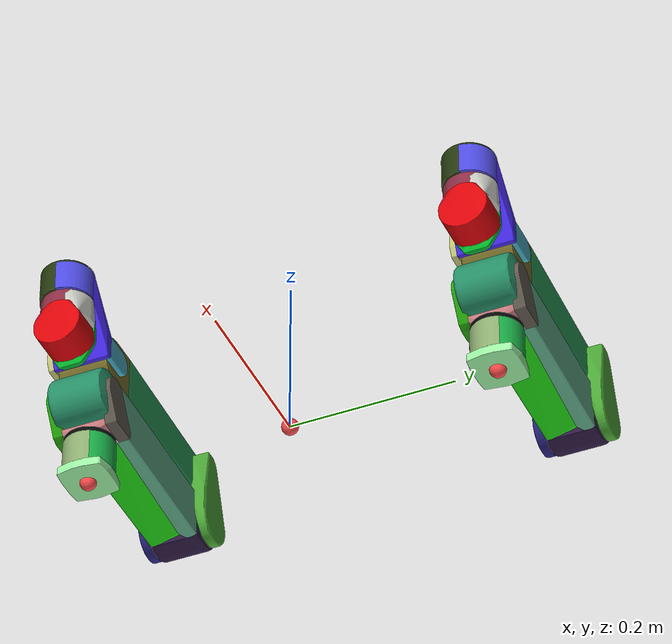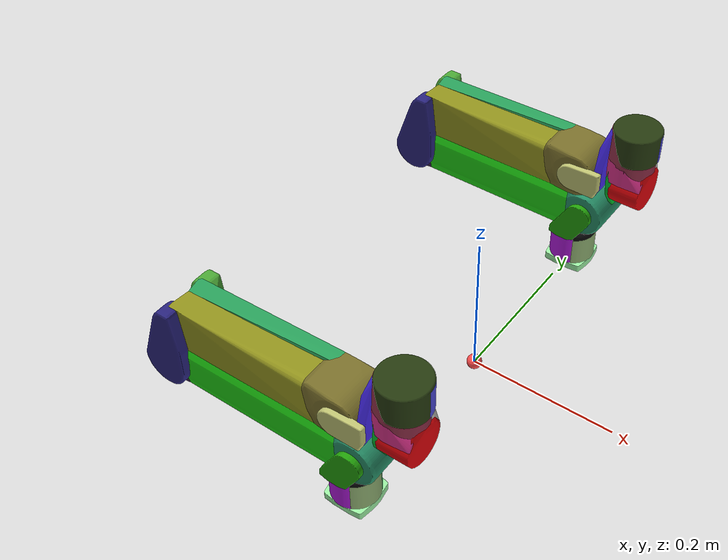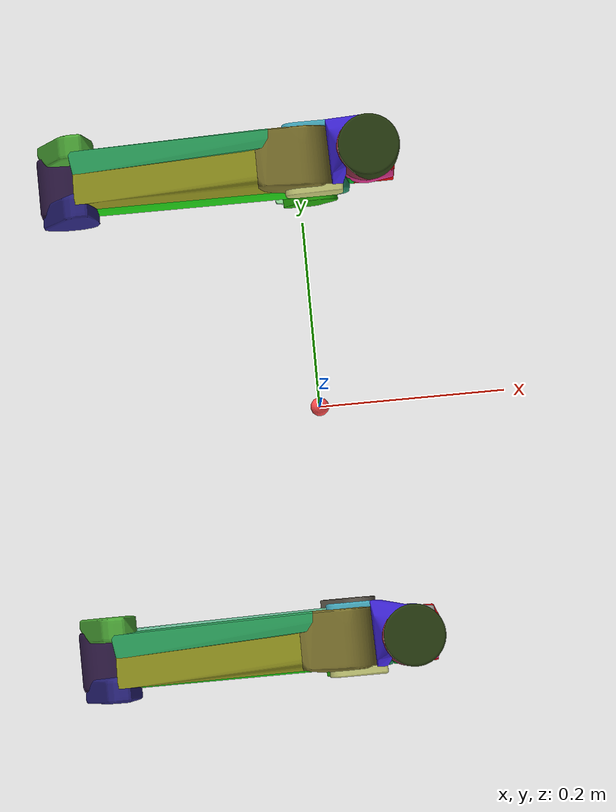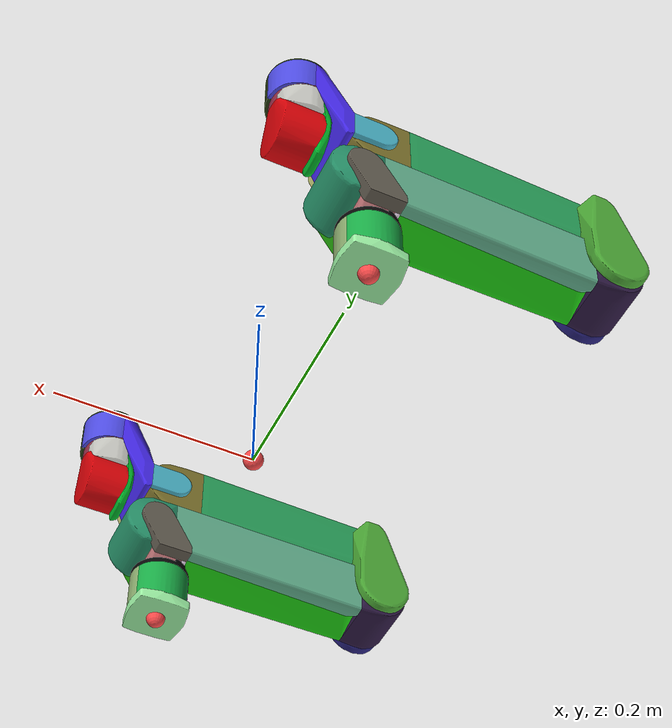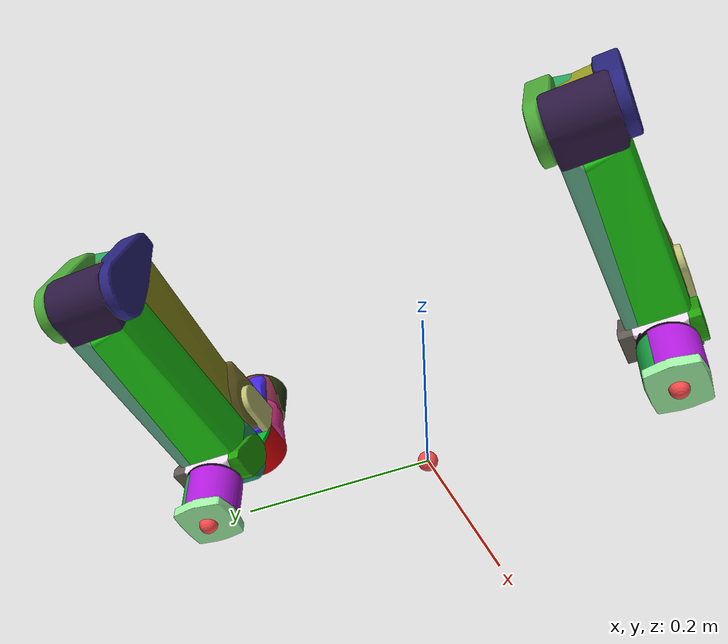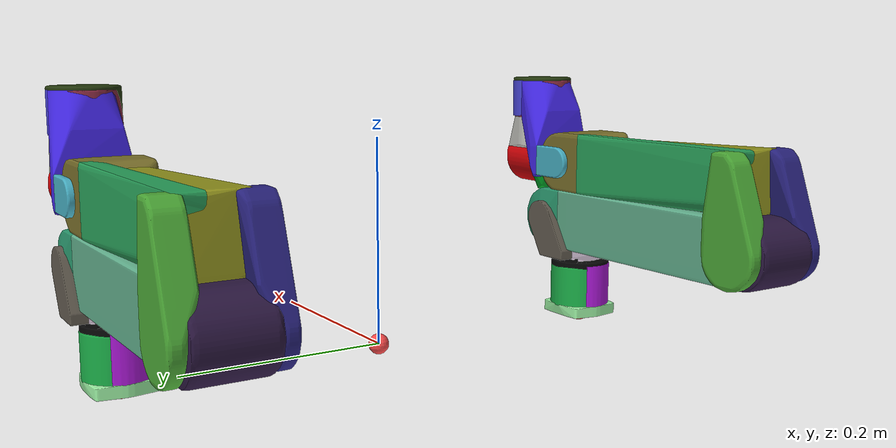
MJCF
<mujoco model="Dual R5a">
  <compiler angle="radian"/>
  <asset>
    <material name="black_metal" specular="0.5" shininess="0.09604875199999999"
              rgba="0.030034 0.030034 0.030034 1.000000"/>
    <material name="grey_metal" specular="0.5" shininess="0.09604875199999999"
              rgba="0.081647 0.081647 0.081647 1.000000"/>
    <material name="white_metal" specular="0.5" shininess="0.25" rgba="0.800000 0.800000 0.800000 1.000000"/>
    <material name="red_light" specular="0.5" shininess="0.25" rgba="1.000000 0.000000 0.000000 1.000000"/>
    <!-- base link -->
    <mesh name="base_link" file="visual/base_link/base_link.obj"/>
    <mesh name="base_link_collision_0" file="collision/base_link/base_link_collision_0.obj"/>
    <mesh name="base_link_collision_1" file="collision/base_link/base_link_collision_1.obj" scale="1 1 0.9"/>
    <mesh name="base_link_collision_2" file="collision/base_link/base_link_collision_2.obj" scale="1 1 0.9"/>
    <mesh name="base_link_collision_3" file="collision/base_link/base_link_collision_3.obj" scale="1 1 0.9"/>
    <mesh name="base_link_collision_4" file="collision/base_link/base_link_collision_4.obj" scale="1 1 0.95"/>

    <!-- link1 -->
    <mesh name="Link1" file="visual/link1/link1.obj"/>
    <mesh name="Link1_collision_0" file="collision/link1/link1_collision_0.obj"/>
    <mesh name="Link1_collision_1" file="collision/link1/link1_collision_1.obj"/>
    <mesh name="Link1_collision_2" file="collision/link1/link1_collision_2.obj"/>
    <mesh name="Link1_collision_3" file="collision/link1/link1_collision_3.obj"/>
    <mesh name="Link1_collision_4" file="collision/link1/link1_collision_4.obj"/>

    <!-- link2 -->
    <mesh name="Link2_0" file="visual/link2/link2_0.obj"/>
    <mesh name="Link2_1" file="visual/link2/link2_1.obj"/>
    <mesh name="Link2_collision_0" file="collision/link2/link2_collision_0.obj"/>
    <mesh name="Link2_collision_1" file="collision/link2/link2_collision_1.obj"/>
    <mesh name="Link2_collision_2" file="collision/link2/link2_collision_2.obj"/>
    <mesh name="Link2_collision_3" file="collision/link2/link2_collision_3.obj"/>
    <mesh name="Link2_collision_4" file="collision/link2/link2_collision_4.obj"/>

    <!-- link3 -->
    <mesh name="Link3_0" file="visual/link3/link3_0.obj"/>
    <mesh name="Link3_1" file="visual/link3/link3_1.obj"/>
    <mesh name="Link3_2" file="visual/link3/link3_2.obj"/>
    <mesh name="Link3_collision_0" file="collision/link3/link3_collision_0.obj"/>
    <mesh name="Link3_collision_1" file="collision/link3/link3_collision_1.obj"/>
    <mesh name="Link3_collision_2" file="collision/link3/link3_collision_2.obj"/>
    <mesh name="Link3_collision_3" file="collision/link3/link3_collision_3.obj"/>
    <mesh name="Link3_collision_4" file="collision/link3/link3_collision_4.obj"/>

    <!-- link4 -->
    <mesh name="Link4_0" file="visual/link4/link4_0.obj"/>
    <mesh name="Link4_1" file="visual/link4/link4_1.obj"/>
    <mesh name="Link4_collision_0" file="collision/link4/link4_collision_0.obj"/>
    <mesh name="Link4_collision_1" file="collision/link4/link4_collision_1.obj"/>
    <mesh name="Link4_collision_2" file="collision/link4/link4_collision_2.obj"/>
    <mesh name="Link4_collision_3" file="collision/link4/link4_collision_3.obj"/>
    <mesh name="Link4_collision_4" file="collision/link4/link4_collision_4.obj"/>

    <!-- link5 -->
    <mesh name="Link5" file="visual/link5/link5.obj"/>
    <mesh name="Link5_collision_0" file="collision/link5/link5_collision_0.obj"/>
    <mesh name="Link5_collision_1" file="collision/link5/link5_collision_1.obj"/>
    <mesh name="Link5_collision_2" file="collision/link5/link5_collision_2.obj"/>
    <mesh name="Link5_collision_3" file="collision/link5/link5_collision_3.obj"/>
    <mesh name="Link5_collision_4" file="collision/link5/link5_collision_4.obj"/>
  </asset>

  <default>
    <default class="visual">
      <geom group="1" type="mesh" contype="0" conaffinity="0"/>
    </default>
    <default class="collision">
      <geom group="0" type="mesh"/>
    </default>
    <default class="arxR5">
      <joint damping="0.1" frictionloss="0.001" actuatorfrcrange="-100 100" limited="true"/>
    </default>
  </default>

  <actuator>
    <!-- Physical limits of the actuator. -->
    <motor ctrllimited="true" ctrlrange="-100.0 100.0" joint="right_joint1" name="torq_right_j1"/>
    <motor ctrllimited="true" ctrlrange="-100.0 100.0" joint="right_joint2" name="torq_right_j2"/>
    <motor ctrllimited="true" ctrlrange="-100.0 100.0" joint="right_joint3" name="torq_right_j3"/>
    <motor ctrllimited="true" ctrlrange="-100.0 100.0" joint="right_joint4" name="torq_right_j4"/>
    <motor ctrllimited="true" ctrlrange="-100.0 100.0" joint="right_joint5" name="torq_right_j5"/>
    <motor ctrllimited="true" ctrlrange="-100.0 100.0" joint="right_joint6" name="torq_right_j6"/>
    <motor ctrllimited="true" ctrlrange="-100.0 100.0" joint="left_joint1" name="torq_left_j1"/>
    <motor ctrllimited="true" ctrlrange="-100.0 100.0" joint="left_joint2" name="torq_left_j2"/>
    <motor ctrllimited="true" ctrlrange="-100.0 100.0" joint="left_joint3" name="torq_left_j3"/>
    <motor ctrllimited="true" ctrlrange="-100.0 100.0" joint="left_joint4" name="torq_left_j4"/>
    <motor ctrllimited="true" ctrlrange="-100.0 100.0" joint="left_joint5" name="torq_left_j5"/>
    <motor ctrllimited="true" ctrlrange="-100.0 100.0" joint="left_joint6" name="torq_left_j6"/>
  </actuator>

  <worldbody>
    <body name="base" pos="0 0 0">
      <site name="center" pos="0 0 0" size="0.01" rgba="1 0.3 0.3 1" group="2"/>
      <camera mode="fixed" name="robotview" pos="1.0 0 0.4" quat="0.653 0.271 0.271 0.653"/>
      <body name="base_link">
        <body name="right_arm_mount" pos="0 0.25 0">
          <site name="right_center" pos="0 0 0" size="0.01" rgba="1 0.3 0.3 1" group="2"/>
          <inertial diaginertia="0.00019 0.00019 0.00020" mass="0.42272" pos="-0.00013359 6.672E-05 0.031672"/>
          <geom material="black_metal" mesh="base_link" class="visual"/>
          <geom mesh="base_link_collision_0" rgba="0.6210706651327209 0.9584934397295742 0.6502693095076579 1"
                class="collision"/>
          <geom mesh="base_link_collision_1" rgba="0.10452051510132321 0.6874989566187261 0.2834344635249487 1"
                class="collision"/>
          <geom mesh="base_link_collision_2" rgba="0.5658325162504014 0.6938774057598451 0.44837190747521105 1"
                class="collision"/>
          <geom mesh="base_link_collision_3" rgba="0.45542819368175735 0.9982831122273342 0.459339008721545 1"
                class="collision"/>
          <geom mesh="base_link_collision_4" rgba="0.703280912292671 0.10254198965667283 0.8750007612935171 1"
                class="collision"/>
          <body name="right_link1" pos="0 0 0.0565">
            <inertial pos="0.0050395 -0.0077407 0.020897" quat="0.632157 0.714526 -0.263733 0.142391" mass="0.096804"
                      diaginertia="0.000118945 9.40205e-05 4.70346e-05"/>
            <joint name="right_joint1" pos="0 0 0" axis="0 0 1" range="-2.618 2.168" class="arxR5"/>
            <geom material="grey_metal" mesh="Link1" class="visual"/>
            <geom mesh="Link1_collision_0" rgba="0.38121461204967966 0.3560860395457812 0.3111875436744904 1"
                  class="collision"/>
            <geom mesh="Link1_collision_1" rgba="0.1365784392707614 0.6433052018608896 0.04070541377362491 1"
                  class="collision"/>
            <geom mesh="Link1_collision_2" rgba="0.7977635689228835 0.48508915405351694 0.495217341427331 1"
                  class="collision"/>
            <geom mesh="Link1_collision_3" rgba="0.9080510710704435 0.18213057670020383 0.46286857033537054 1"
                  class="collision"/>
            <geom mesh="Link1_collision_4" rgba="0.9591006865667313 0.8828544926611211 0.9745736636152352 1"
                  class="collision"/>
            <body name="right_link2" pos="0.02 0 0.047">
              <inertial pos="-0.12992 -0.0011822 -2.6366e-05" quat="0.501263 0.501263 0.498734 0.498734" mass="1.1988"
                        diaginertia="0.0164704 0.01646 0.000649595"/>
              <joint name="right_joint2" pos="0 0 0" axis="0 1 0" range="0 3.66"
                     class="arxR5"/>
              <geom mesh="Link2_0" material="white_metal" class="visual"/>
              <geom mesh="Link2_1" material="black_metal" class="visual"/>
              <geom mesh="Link2_collision_0" rgba="0.3845193491695158 0.6893016307097257 0.5526143820214435 1"
                    class="collision"/>
              <geom mesh="Link2_collision_1" rgba="0.12393072670730176 0.8409806730894566 0.07730018641742153 1"
                    class="collision"/>
              <geom mesh="Link2_collision_2" rgba="0.15326438923024877 0.5734147638728145 0.413737978153881 1"
                    class="collision"/>
              <geom mesh="Link2_collision_3" rgba="0.875015813744414 0.9303245909965339 0.42790726151957237 1"
                    class="collision"/>
              <geom mesh="Link2_collision_4" rgba="0.1785095828887474 0.09899917969866345 0.25904939020285245 1"
                    class="collision"/>
              <body name="right_link3" pos="-0.264 0 0" quat="-3.67321e-06 -1 0 0">
                <inertial pos="0.16181 0.0011723 -0.05455" quat="0.518857 0.484372 0.465704 0.52848" mass="0.84082"
                          diaginertia="0.0084909 0.00841207 0.000747034"/>
                <joint name="right_joint3" pos="0 0 0" axis="0 1 0" range="0 3.14"
                       class="arxR5"/>
                <geom mesh="Link3_0" material="grey_metal" class="visual"/>
                <geom mesh="Link3_1" material="red_light" class="visual"/>
                <geom mesh="Link3_2" material="black_metal" class="visual"/>
                <geom mesh="Link3_collision_0" rgba="0.5827458249520178 0.5861786026725609 0.11641713432099554 1"
                      class="collision"/>
                <geom mesh="Link3_collision_1" rgba="0.1630396124232848 0.13886688517180568 0.49340874802121715 1"
                      class="collision"/>
                <geom mesh="Link3_collision_2" rgba="0.48504423242209305 0.4447941058591691 0.17227150461426965 1"
                      class="collision"/>
                <geom mesh="Link3_collision_3" rgba="0.3017163500739384 0.6668259064006218 0.2166641049396998 1"
                      class="collision"/>
                <geom mesh="Link3_collision_4" rgba="0.1624279727636625 0.6387475822564527 0.3583579925415781 1"
                      class="collision"/>
                <body name="right_link4" pos="0.245 -5e-05 -0.06">
                  <inertial pos="0.041751 0.0054236 -0.03337" quat="0.919386 -0.0641253 0.311071 -0.23206"
                            mass="0.12432"
                            diaginertia="0.000303193 0.000235316 0.000101491"/>
                  <joint name="right_joint4" pos="0 0 0" axis="0 1 0" range="-1.57 1.57"
                         class="arxR5"/>
                  <geom mesh="Link4_0" material="grey_metal" class="visual"/>
                  <geom mesh="Link4_1" material="black_metal" class="visual"/>
                  <geom mesh="Link4_collision_0" rgba="0.15209532450810004 0.23176319304031212 0.06213644995319256 1"
                        class="collision"/>
                  <geom mesh="Link4_collision_1" rgba="0.26897835952473903 0.15747097238167496 0.9147569055247028 1"
                        class="collision"/>
                  <geom mesh="Link4_collision_2" rgba="0.7680035981210199 0.7802802429613818 0.46101575525145766 1"
                        class="collision"/>
                  <geom mesh="Link4_collision_3" rgba="0.28437484577195726 0.6959220506181397 0.7766804684291057 1"
                        class="collision"/>
                  <geom mesh="Link4_collision_4" rgba="0.3103693551483958 0.3012472213478786 0.897505630555006 1"
                        class="collision"/>
                  <body name="right_link5" pos="0.0702 5e-05 -0.083391">
                    <inertial pos="-8.3435e-05 -1.5428e-05 0.052216" quat="0.998247 0 -0.0591776 0" mass="0.63601"
                              diaginertia="0.000848329 0.00082 0.000251671"/>
                    <joint name="right_joint5" pos="0 0 0" axis="0 0 1" range="-1.57 1.57"
                           class="arxR5"/>
                    <geom material="black_metal" mesh="Link5" class="visual"/>
                    <geom mesh="Link5_collision_0" rgba="0.8852573598354373 0.01352149391008306 0.03491082639517318 1"
                          class="collision"/>
                    <geom mesh="Link5_collision_1" rgba="0.5589390023829238 0.18004459372553394 0.27840492332639843 1"
                          class="collision"/>
                    <geom mesh="Link5_collision_2" rgba="0.010859895985466883 0.7097266106696243 0.16657383726737163 1"
                          class="collision"/>
                    <geom mesh="Link5_collision_3" rgba="0.8673933939093466 0.19804500417830295 0.5494281042266982 1"
                          class="collision"/>
                    <geom mesh="Link5_collision_4" rgba="0.7953956313512182 0.7967614972059368 0.7701104031704928 1"
                          class="collision"/>
                    <body name="right_link6" pos="0.025286 0 0.083391" quat="-3.67321e-06 1 0 0">
                      <joint name="right_joint6" pos="0 0 0" axis="1 0 0" range="-1.57 1.57"
                             class="arxR5"/>
                      <inertial pos="0.041697 2.4368e-05 0.00014464" quat="0.5 0.5 -0.5 0.5" mass="0.10089"
                                diaginertia="0.0005 0.00038 0.00028"/>
                      <body name="right_hand" pos="0.0 0.0 0.0" quat="0 0.7071 0 0.7071">
                        <camera mode="fixed" name="right_eye_in_hand" pos="0.06 0 0.05" quat="0 0.707108 0.707108 0"
                                fovy="75"/>
                      </body>
                    </body>
                  </body>
                </body>
              </body>
            </body>
          </body>
        </body>
        <body name="left_arm_mount" pos="0 -0.25 0">
          <inertial diaginertia="0.00019 0.00019 0.00020" mass="0.42272" pos="-0.00013359 6.672E-05 0.031672"/>
          <site name="left_center" pos="0 0 0" size="0.01" rgba="1 0.3 0.3 1" group="2"/>
          <geom material="black_metal" mesh="base_link" class="visual"/>
          <geom mesh="base_link_collision_0" rgba="0.6210706651327209 0.9584934397295742 0.6502693095076579 1"
                class="collision"/>
          <geom mesh="base_link_collision_1" rgba="0.10452051510132321 0.6874989566187261 0.2834344635249487 1"
                class="collision"/>
          <geom mesh="base_link_collision_2" rgba="0.5658325162504014 0.6938774057598451 0.44837190747521105 1"
                class="collision"/>
          <geom mesh="base_link_collision_3" rgba="0.45542819368175735 0.9982831122273342 0.459339008721545 1"
                class="collision"/>
          <geom mesh="base_link_collision_4" rgba="0.703280912292671 0.10254198965667283 0.8750007612935171 1"
                class="collision"/>
          <body name="left_link1" pos="0 0 0.0565">
            <inertial pos="0.0050395 -0.0077407 0.020897" quat="0.632157 0.714526 -0.263733 0.142391" mass="0.096804"
                      diaginertia="0.000118945 9.40205e-05 4.70346e-05"/>
            <joint name="left_joint1" pos="0 0 0" axis="0 0 1" range="-2.618 2.168"
                   class="arxR5"/>
            <geom material="grey_metal" mesh="Link1" class="visual"/>
            <geom mesh="Link1_collision_0" rgba="0.38121461204967966 0.3560860395457812 0.3111875436744904 1"
                  class="collision"/>
            <geom mesh="Link1_collision_1" rgba="0.1365784392707614 0.6433052018608896 0.04070541377362491 1"
                  class="collision"/>
            <geom mesh="Link1_collision_2" rgba="0.7977635689228835 0.48508915405351694 0.495217341427331 1"
                  class="collision"/>
            <geom mesh="Link1_collision_3" rgba="0.9080510710704435 0.18213057670020383 0.46286857033537054 1"
                  class="collision"/>
            <geom mesh="Link1_collision_4" rgba="0.9591006865667313 0.8828544926611211 0.9745736636152352 1"
                  class="collision"/>
            <body name="left_link2" pos="0.02 0 0.047">
              <inertial pos="-0.12992 -0.0011822 -2.6366e-05" quat="0.501263 0.501263 0.498734 0.498734" mass="1.1988"
                        diaginertia="0.0164704 0.01646 0.000649595"/>
              <joint name="left_joint2" pos="0 0 0" axis="0 1 0" range="0 3.66" class="arxR5"/>
              <geom mesh="Link2_0" material="white_metal" class="visual"/>
              <geom mesh="Link2_1" material="black_metal" class="visual"/>
              <geom mesh="Link2_collision_0" rgba="0.3845193491695158 0.6893016307097257 0.5526143820214435 1"
                    class="collision"/>
              <geom mesh="Link2_collision_1" rgba="0.12393072670730176 0.8409806730894566 0.07730018641742153 1"
                    class="collision"/>
              <geom mesh="Link2_collision_2" rgba="0.15326438923024877 0.5734147638728145 0.413737978153881 1"
                    class="collision"/>
              <geom mesh="Link2_collision_3" rgba="0.875015813744414 0.9303245909965339 0.42790726151957237 1"
                    class="collision"/>
              <geom mesh="Link2_collision_4" rgba="0.1785095828887474 0.09899917969866345 0.25904939020285245 1"
                    class="collision"/>
              <body name="left_link3" pos="-0.264 0 0" quat="-3.67321e-06 -1 0 0">
                <inertial pos="0.16181 0.0011723 -0.05455" quat="0.518857 0.484372 0.465704 0.52848" mass="0.84082"
                          diaginertia="0.0084909 0.00841207 0.000747034"/>
                <joint name="left_joint3" pos="0 0 0" axis="0 1 0" range="0 3.14"
                       class="arxR5"/>
                <geom mesh="Link3_0" material="grey_metal" class="visual"/>
                <geom mesh="Link3_1" material="red_light" class="visual"/>
                <geom mesh="Link3_2" material="black_metal" class="visual"/>
                <geom mesh="Link3_collision_0" rgba="0.5827458249520178 0.5861786026725609 0.11641713432099554 1"
                      class="collision"/>
                <geom mesh="Link3_collision_1" rgba="0.1630396124232848 0.13886688517180568 0.49340874802121715 1"
                      class="collision"/>
                <geom mesh="Link3_collision_2" rgba="0.48504423242209305 0.4447941058591691 0.17227150461426965 1"
                      class="collision"/>
                <geom mesh="Link3_collision_3" rgba="0.3017163500739384 0.6668259064006218 0.2166641049396998 1"
                      class="collision"/>
                <geom mesh="Link3_collision_4" rgba="0.1624279727636625 0.6387475822564527 0.3583579925415781 1"
                      class="collision"/>
                <body name="left_link4" pos="0.245 -5e-05 -0.06">
                  <inertial pos="0.041751 0.0054236 -0.03337" quat="0.919386 -0.0641253 0.311071 -0.23206"
                            mass="0.12432"
                            diaginertia="0.000303193 0.000235316 0.000101491"/>
                  <joint name="left_joint4" pos="0 0 0" axis="0 1 0" range="-1.57 1.57"
                         class="arxR5"/>
                  <geom mesh="Link4_0" material="grey_metal" class="visual"/>
                  <geom mesh="Link4_1" material="black_metal" class="visual"/>
                  <geom mesh="Link4_collision_0" rgba="0.15209532450810004 0.23176319304031212 0.06213644995319256 1"
                        class="collision"/>
                  <geom mesh="Link4_collision_1" rgba="0.26897835952473903 0.15747097238167496 0.9147569055247028 1"
                        class="collision"/>
                  <geom mesh="Link4_collision_2" rgba="0.7680035981210199 0.7802802429613818 0.46101575525145766 1"
                        class="collision"/>
                  <geom mesh="Link4_collision_3" rgba="0.28437484577195726 0.6959220506181397 0.7766804684291057 1"
                        class="collision"/>
                  <geom mesh="Link4_collision_4" rgba="0.3103693551483958 0.3012472213478786 0.897505630555006 1"
                        class="collision"/>
                  <body name="left_link5" pos="0.0702 5e-05 -0.083391">
                    <inertial pos="-8.3435e-05 -1.5428e-05 0.052216" quat="0.998247 0 -0.0591776 0" mass="0.63601"
                              diaginertia="0.000848329 0.00082 0.000251671"/>
                    <joint name="left_joint5" pos="0 0 0" axis="0 0 1" range="-1.57 1.57"
                           class="arxR5"/>
                    <geom material="black_metal" mesh="Link5" class="visual"/>
                    <geom mesh="Link5_collision_0" rgba="0.8852573598354373 0.01352149391008306 0.03491082639517318 1"
                          class="collision"/>
                    <geom mesh="Link5_collision_1" rgba="0.5589390023829238 0.18004459372553394 0.27840492332639843 1"
                          class="collision"/>
                    <geom mesh="Link5_collision_2" rgba="0.010859895985466883 0.7097266106696243 0.16657383726737163 1"
                          class="collision"/>
                    <geom mesh="Link5_collision_3" rgba="0.8673933939093466 0.19804500417830295 0.5494281042266982 1"
                          class="collision"/>
                    <geom mesh="Link5_collision_4" rgba="0.7953956313512182 0.7967614972059368 0.7701104031704928 1"
                          class="collision"/>
                    <body name="left_link6" pos="0.025286 0 0.083391" quat="-3.67321e-06 1 0 0">
                      <joint name="left_joint6" pos="0 0 0" axis="1 0 0" range="-1.57 1.57"
                             class="arxR5"/>
                      <inertial pos="0.041697 2.4368e-05 0.00014464" quat="0.5 0.5 -0.5 0.5" mass="0.10089"
                                diaginertia="0.0005 0.00038 0.00028"/>
                      <body name="left_hand" pos="0.0 0.0 0.0" quat="0 0.7071 0 0.7071">
                        <camera mode="fixed" name="left_eye_in_hand" pos="0.06 0 0.05" quat="0 0.707108 0.707108 0"
                                fovy="75"/>
                      </body>
                    </body>
                  </body>
                </body>
              </body>
            </body>
          </body>
        </body>
      </body>
    </body>
  </worldbody>
</mujoco>
